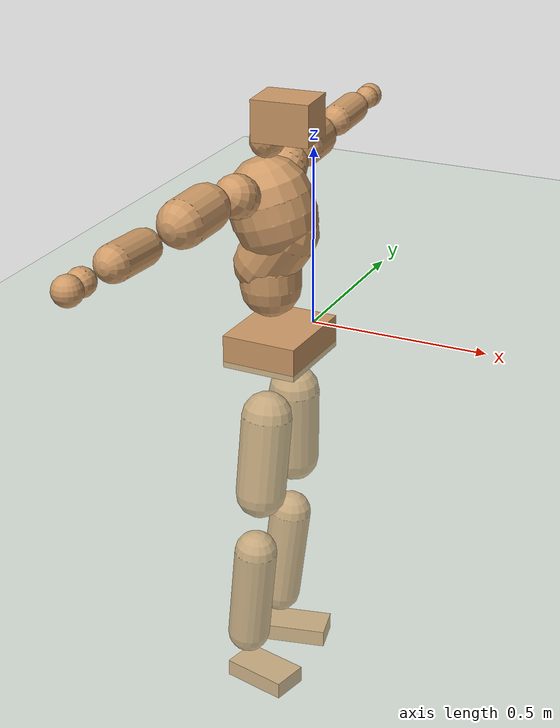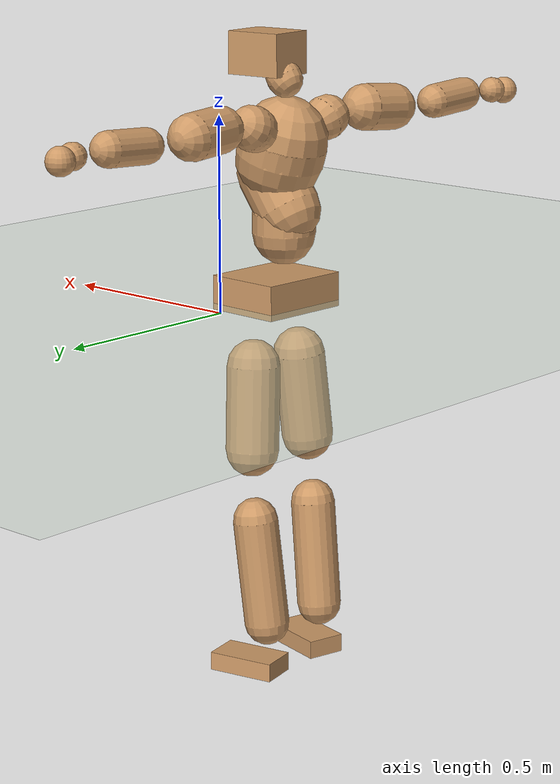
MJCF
<mujoco model="humanoid">
  <compiler coordinate="local" angle="radian"/>
  <default>
    <joint damping="0.0" armature="0.01" stiffness="0.0" limited="true"/>
    <geom conaffinity="1" condim="3" contype="7" margin="0.001" rgba="0.8 0.6 .4 1"/>
  </default>
  <asset>
    <texture type="skybox" builtin="gradient" rgb1=".4 .5 .6" rgb2="0 0 0" width="100" height="100"/>
    <texture builtin="flat" height="1278" mark="cross" markrgb="1 1 1" name="texgeom" random="0.01" rgb1="0.8 0.6 0.4" rgb2="0.8 0.6 0.4" type="cube" width="127"/>
    <texture builtin="checker" height="100" name="texplane" rgb1="0 0 0" rgb2="0.8 0.8 0.8" type="2d" width="100"/>
    <material name="MatPlane" reflectance="0.5" shininess="1" specular="1" texrepeat="60 60" texture="texplane"/>
    <material name="geom" texture="texgeom" texuniform="true"/>
  </asset>
  <worldbody>
    <light cutoff="100" diffuse="1 1 1" dir="-0 0 -1.3" directional="true" exponent="1" pos="0 0 1.3" specular=".1 .1 .1"/>
    <geom conaffinity="1" condim="3" name="floor" pos="0 0 0" rgba="0.8 0.9 0.8 1" size="100 100 .2" type="plane" material="MatPlane"/>
    <body name="Pelvis" pos="0.0018 -0.204 0.0402">
      <freejoint name="Pelvis"/>
      <geom type="box" contype="1" conaffinity="1" density="5359.374553" pos="-0.0056 0.0002 -0.0139" size="0.1033 0.1258 0.0449" quat="0.9999 0.0000 0.0000 -0.0163" name="Pelvis"/>
      <body name="L_Hip" pos="-0.0039 0.083 -0.0976">
        <joint name="L_Hip_x" type="hinge" pos="0 0 0" axis="1 0 0" stiffness="1600" damping="160" armature="0.02" range="-180.0000 180.0000"/>
        <joint name="L_Hip_y" type="hinge" pos="0 0 0" axis="0 1 0" stiffness="1600" damping="160" armature="0.02" range="-180.0000 180.0000"/>
        <joint name="L_Hip_z" type="hinge" pos="0 0 0" axis="0 0 1" stiffness="1600" damping="160" armature="0.02" range="-180.0000 180.0000"/>
        <geom type="capsule" contype="1" conaffinity="1" density="2040.816327" size="0.0689" fromto="-0.0044 0.0076 -0.0985 -0.0142 0.0244 -0.3180" name="L_Hip"/>
        <body name="L_Knee" pos="-0.0185 0.0319 -0.4165">
          <joint name="L_Knee_x" type="hinge" pos="0 0 0" axis="1 0 0" stiffness="1600" damping="160" armature="0.02" range="-180.0000 180.0000"/>
          <joint name="L_Knee_y" type="hinge" pos="0 0 0" axis="0 1 0" stiffness="1600" damping="160" armature="0.02" range="-180.0000 180.0000"/>
          <joint name="L_Knee_z" type="hinge" pos="0 0 0" axis="0 0 1" stiffness="1600" damping="160" armature="0.02" range="-180.0000 180.0000"/>
          <geom type="capsule" contype="1" conaffinity="1" density="1234.567901" size="0.0586" fromto="-0.0103 -0.0025 -0.0880 -0.0427 -0.0103 -0.3639" name="L_Knee"/>
          <body name="L_Ankle" pos="-0.0531 -0.0128 -0.4519">
            <joint name="L_Ankle_x" type="hinge" pos="0 0 0" axis="1 0 0" stiffness="1600" damping="160" armature="0.02" range="-180.0000 180.0000"/>
            <joint name="L_Ankle_y" type="hinge" pos="0 0 0" axis="0 1 0" stiffness="1600" damping="160" armature="0.02" range="-180.0000 180.0000"/>
            <joint name="L_Ankle_z" type="hinge" pos="0 0 0" axis="0 0 1" stiffness="1600" damping="160" armature="0.02" range="-180.0000 180.0000"/>
            <geom type="box" contype="1" conaffinity="1" density="1000.000009" pos="0.0628 0.0134 -0.0320" size="0.0895 0.0502 0.0241" quat="0.9945 0.0000 0.0000 0.1051" name="L_Ankle"/>
            <body name="L_Toe" pos="0.1255 0.0268 -0.064">
              <joint name="L_Toe_x" type="hinge" pos="0 0 0" axis="1 0 0" stiffness="1000" damping="100" armature="0.02" range="-180.0000 180.0000"/>
              <joint name="L_Toe_y" type="hinge" pos="0 0 0" axis="0 1 0" stiffness="1000" damping="100" armature="0.02" range="-180.0000 180.0000"/>
              <joint name="L_Toe_z" type="hinge" pos="0 0 0" axis="0 0 1" stiffness="1000" damping="100" armature="0.02" range="-180.0000 180.0000"/>
              <geom type="box" contype="1" conaffinity="1" density="8419927.39618" pos="0.0000 0.0000 0.0307" size="0.0011 0.0025 0.0011" quat="0.9938 0.0000 0.0000 0.1109" name="L_Toe"/>
            </body>
          </body>
        </body>
      </body>
      <body name="R_Hip" pos="0.0008 -0.0803 -0.098">
        <joint name="R_Hip_x" type="hinge" pos="0 0 0" axis="1 0 0" stiffness="1600" damping="160" armature="0.02" range="-180.0000 180.0000"/>
        <joint name="R_Hip_y" type="hinge" pos="0 0 0" axis="0 1 0" stiffness="1600" damping="160" armature="0.02" range="-180.0000 180.0000"/>
        <joint name="R_Hip_z" type="hinge" pos="0 0 0" axis="0 0 1" stiffness="1600" damping="160" armature="0.02" range="-180.0000 180.0000"/>
        <geom type="capsule" contype="1" conaffinity="1" density="2040.816327" size="0.0679" fromto="-0.0046 -0.0095 -0.0974 -0.0153 -0.0314 -0.3228" name="R_Hip"/>
        <body name="R_Knee" pos="-0.0199 -0.0409 -0.4202">
          <joint name="R_Knee_x" type="hinge" pos="0 0 0" axis="1 0 0" stiffness="1600" damping="160" armature="0.02" range="-180.0000 180.0000"/>
          <joint name="R_Knee_y" type="hinge" pos="0 0 0" axis="0 1 0" stiffness="1600" damping="160" armature="0.02" range="-180.0000 180.0000"/>
          <joint name="R_Knee_z" type="hinge" pos="0 0 0" axis="0 0 1" stiffness="1600" damping="160" armature="0.02" range="-180.0000 180.0000"/>
          <geom type="capsule" contype="1" conaffinity="1" density="1234.567901" size="0.0586" fromto="-0.0099 0.0031 -0.0880 -0.0412 0.0128 -0.3660" name="R_Knee"/>
          <body name="R_Ankle" pos="-0.0511 0.0159 -0.4541">
            <joint name="R_Ankle_x" type="hinge" pos="0 0 0" axis="1 0 0" stiffness="1600" damping="160" armature="0.02" range="-180.0000 180.0000"/>
            <joint name="R_Ankle_y" type="hinge" pos="0 0 0" axis="0 1 0" stiffness="1600" damping="160" armature="0.02" range="-180.0000 180.0000"/>
            <joint name="R_Ankle_z" type="hinge" pos="0 0 0" axis="0 0 1" stiffness="1600" damping="160" armature="0.02" range="-180.0000 180.0000"/>
            <geom type="box" contype="1" conaffinity="1" density="1000.000008" pos="0.0653 -0.0155 -0.0276" size="0.0919 0.0512 0.0238" quat="0.9932 0.0000 0.0000 -0.1164" name="R_Ankle"/>
            <body name="R_Toe" pos="0.1307 -0.0311 -0.0552">
              <joint name="R_Toe_x" type="hinge" pos="0 0 0" axis="1 0 0" stiffness="1000" damping="100" armature="0.02" range="-180.0000 180.0000"/>
              <joint name="R_Toe_y" type="hinge" pos="0 0 0" axis="0 1 0" stiffness="1000" damping="100" armature="0.02" range="-180.0000 180.0000"/>
              <joint name="R_Toe_z" type="hinge" pos="0 0 0" axis="0 0 1" stiffness="1000" damping="100" armature="0.02" range="-180.0000 180.0000"/>
              <geom type="box" contype="1" conaffinity="1" density="7898447.439294" pos="0.0000 0.0000 0.0289" size="0.001 0.0025 0.0012" quat="0.9942 0.0000 0.0000 -0.1076" name="R_Toe"/>
            </body>
          </body>
        </body>
      </body>
      <body name="Torso" pos="-0.0306 -0.0016 0.1119">
        <joint name="Torso_x" type="hinge" pos="0 0 0" axis="1 0 0" stiffness="2000" damping="200" armature="0.02" range="-180.0000 180.0000"/>
        <joint name="Torso_y" type="hinge" pos="0 0 0" axis="0 1 0" stiffness="2000" damping="200" armature="0.02" range="-180.0000 180.0000"/>
        <joint name="Torso_z" type="hinge" pos="0 0 0" axis="0 0 1" stiffness="2000" damping="200" armature="0.02" range="-180.0000 180.0000"/>
        <geom type="capsule" contype="1" conaffinity="1" density="2040.816327" size="0.0815" fromto="-0.0014 0.0010 0.0815 -0.0005 0.0004 0.0294" name="Torso"/>
        <body name="Spine" pos="-0.0019 0.0014 0.1109">
          <joint name="Spine_x" type="hinge" pos="0 0 0" axis="1 0 0" stiffness="2000" damping="200" armature="0.02" range="-180.0000 180.0000"/>
          <joint name="Spine_y" type="hinge" pos="0 0 0" axis="0 1 0" stiffness="2000" damping="200" armature="0.02" range="-180.0000 180.0000"/>
          <joint name="Spine_z" type="hinge" pos="0 0 0" axis="0 0 1" stiffness="2000" damping="200" armature="0.02" range="-180.0000 180.0000"/>
          <geom type="capsule" contype="1" conaffinity="1" density="2040.816327" size="0.0842" fromto="0.0474 0.0025 0.0695 -0.0137 -0.0007 -0.0201" name="Spine"/>
          <body name="Chest" pos="0.0337 0.0017 0.0494">
            <joint name="Chest_x" type="hinge" pos="0 0 0" axis="1 0 0" stiffness="2000" damping="200" armature="0.02" range="-180.0000 180.0000"/>
            <joint name="Chest_y" type="hinge" pos="0 0 0" axis="0 1 0" stiffness="2000" damping="200" armature="0.02" range="-180.0000 180.0000"/>
            <joint name="Chest_z" type="hinge" pos="0 0 0" axis="0 0 1" stiffness="2000" damping="200" armature="0.02" range="-180.0000 180.0000"/>
            <geom type="capsule" contype="1" conaffinity="1" density="2040.816327" size="0.113" fromto="-0.0348 -0.0004 0.1075 -0.0191 -0.0002 0.0590" name="Chest"/>
            <body name="Neck" pos="-0.0638 -0.0004 0.2339">
              <joint name="Neck_x" type="hinge" pos="0 0 0" axis="1 0 0" stiffness="1000" damping="100" armature="0.02" range="-180.0000 180.0000"/>
              <joint name="Neck_y" type="hinge" pos="0 0 0" axis="0 1 0" stiffness="1000" damping="100" armature="0.02" range="-180.0000 180.0000"/>
              <joint name="Neck_z" type="hinge" pos="0 0 0" axis="0 0 1" stiffness="1000" damping="100" armature="0.02" range="-180.0000 180.0000"/>
              <geom type="capsule" contype="1" conaffinity="1" density="1000" size="0.0451" fromto="0.0299 0.0014 0.0337 0.0231 0.0010 0.0260" name="Neck"/>
              <body name="Head" pos="0.053 0.0024 0.0598">
                <joint name="Head_x" type="hinge" pos="0 0 0" axis="1 0 0" stiffness="1000" damping="100" armature="0.02" range="-180.0000 180.0000"/>
                <joint name="Head_y" type="hinge" pos="0 0 0" axis="0 1 0" stiffness="1000" damping="100" armature="0.02" range="-180.0000 180.0000"/>
                <joint name="Head_z" type="hinge" pos="0 0 0" axis="0 0 1" stiffness="1000" damping="100" armature="0.02" range="-180.0000 180.0000"/>
                <geom type="box" contype="1" conaffinity="1" density="2250.000396" pos="0.0275 0.0022 0.0309" size="0.0767 0.062 0.0545" quat="0.9992 0.0000 0.0000 0.0399" name="Head"/>
              </body>
            </body>
            <body name="L_Thorax" pos="-0.0466 0.0866 0.1335">
              <joint name="L_Thorax_x" type="hinge" pos="0 0 0" axis="1 0 0" stiffness="1000" damping="100" armature="0.02" range="-180.0000 180.0000"/>
              <joint name="L_Thorax_y" type="hinge" pos="0 0 0" axis="0 1 0" stiffness="1000" damping="100" armature="0.02" range="-180.0000 180.0000"/>
              <joint name="L_Thorax_z" type="hinge" pos="0 0 0" axis="0 0 1" stiffness="1000" damping="100" armature="0.02" range="-180.0000 180.0000"/>
              <geom type="capsule" contype="1" conaffinity="1" density="1000" size="0.0577" fromto="-0.0064 0.0534 0.0210 -0.0046 0.0388 0.0152" name="L_Thorax"/>
              <body name="L_Shoulder" pos="-0.011 0.0922 0.0362">
                <joint name="L_Shoulder_x" type="hinge" pos="0 0 0" axis="1 0 0" stiffness="1000" damping="100" armature="0.02" range="-720.0000 720.0000"/>
                <joint name="L_Shoulder_y" type="hinge" pos="0 0 0" axis="0 1 0" stiffness="1000" damping="100" armature="0.02" range="-720.0000 720.0000"/>
                <joint name="L_Shoulder_z" type="hinge" pos="0 0 0" axis="0 0 1" stiffness="1000" damping="100" armature="0.02" range="-720.0000 720.0000"/>
                <geom type="capsule" contype="1" conaffinity="1" density="1000" size="0.059" fromto="-0.0095 0.0883 -0.0042 -0.0213 0.1983 -0.0095" name="L_Shoulder"/>
                <body name="L_Elbow" pos="-0.0308 0.2867 -0.0138">
                  <joint name="L_Elbow_x" type="hinge" pos="0 0 0" axis="1 0 0" stiffness="1000" damping="100" armature="0.02" range="-720.0000 720.0000"/>
                  <joint name="L_Elbow_y" type="hinge" pos="0 0 0" axis="0 1 0" stiffness="1000" damping="100" armature="0.02" range="-720.0000 720.0000"/>
                  <joint name="L_Elbow_z" type="hinge" pos="0 0 0" axis="0 0 1" stiffness="1000" damping="100" armature="0.02" range="-720.0000 720.0000"/>
                  <geom type="capsule" contype="1" conaffinity="1" density="1000" size="0.0442" fromto="0.0003 0.0741 0.0037 0.0007 0.1923 0.0097" name="L_Elbow"/>
                  <body name="L_Wrist" pos="0.001 0.2664 0.0134">
                    <joint name="L_Wrist_x" type="hinge" pos="0 0 0" axis="1 0 0" stiffness="600" damping="60" armature="0.02" range="-180.0000 180.0000"/>
                    <joint name="L_Wrist_y" type="hinge" pos="0 0 0" axis="0 1 0" stiffness="600" damping="60" armature="0.02" range="-180.0000 180.0000"/>
                    <joint name="L_Wrist_z" type="hinge" pos="0 0 0" axis="0 0 1" stiffness="600" damping="60" armature="0.02" range="-180.0000 180.0000"/>
                    <geom type="capsule" contype="1" conaffinity="1" density="1000" size="0.0332" fromto="-0.0071 0.0428 -0.0051 -0.0074 0.0448 -0.0053" name="L_Wrist"/>
                    <body name="L_Hand" pos="-0.0145 0.0876 -0.0105">
                      <joint name="L_Hand_x" type="hinge" pos="0 0 0" axis="1 0 0" stiffness="600" damping="60" armature="0.02" range="-180.0000 180.0000"/>
                      <joint name="L_Hand_y" type="hinge" pos="0 0 0" axis="0 1 0" stiffness="600" damping="60" armature="0.02" range="-180.0000 180.0000"/>
                      <joint name="L_Hand_z" type="hinge" pos="0 0 0" axis="0 0 1" stiffness="600" damping="60" armature="0.02" range="-180.0000 180.0000"/>
                      <geom type="sphere" contype="1" conaffinity="1" density="1000" size="0.0352" pos="0.0000 0.0000 0.0000" name="L_Hand"/>
                    </body>
                  </body>
                </body>
              </body>
            </body>
            <body name="R_Thorax" pos="-0.0513 -0.0883 0.1321">
              <joint name="R_Thorax_x" type="hinge" pos="0 0 0" axis="1 0 0" stiffness="1000" damping="100" armature="0.02" range="-180.0000 180.0000"/>
              <joint name="R_Thorax_y" type="hinge" pos="0 0 0" axis="0 1 0" stiffness="1000" damping="100" armature="0.02" range="-180.0000 180.0000"/>
              <joint name="R_Thorax_z" type="hinge" pos="0 0 0" axis="0 0 1" stiffness="1000" damping="100" armature="0.02" range="-180.0000 180.0000"/>
              <geom type="capsule" contype="1" conaffinity="1" density="1000" size="0.0572" fromto="-0.0061 -0.0525 0.0218 -0.0050 -0.0431 0.0179" name="R_Thorax"/>
              <body name="R_Shoulder" pos="-0.0111 -0.0956 0.0397">
                <joint name="R_Shoulder_x" type="hinge" pos="0 0 0" axis="1 0 0" stiffness="1000" damping="100" armature="0.02" range="-720.0000 720.0000"/>
                <joint name="R_Shoulder_y" type="hinge" pos="0 0 0" axis="0 1 0" stiffness="1000" damping="100" armature="0.02" range="-720.0000 720.0000"/>
                <joint name="R_Shoulder_z" type="hinge" pos="0 0 0" axis="0 0 1" stiffness="1000" damping="100" armature="0.02" range="-720.0000 720.0000"/>
                <geom type="capsule" contype="1" conaffinity="1" density="1000" size="0.0616" fromto="-0.0081 -0.0910 -0.0063 -0.0171 -0.1923 -0.0134" name="R_Shoulder"/>
                <body name="R_Elbow" pos="-0.0251 -0.2833 -0.0197">
                  <joint name="R_Elbow_x" type="hinge" pos="0 0 0" axis="1 0 0" stiffness="1000" damping="100" armature="0.02" range="-720.0000 720.0000"/>
                  <joint name="R_Elbow_y" type="hinge" pos="0 0 0" axis="0 1 0" stiffness="1000" damping="100" armature="0.02" range="-720.0000 720.0000"/>
                  <joint name="R_Elbow_z" type="hinge" pos="0 0 0" axis="0 0 1" stiffness="1000" damping="100" armature="0.02" range="-720.0000 720.0000"/>
                  <geom type="capsule" contype="1" conaffinity="1" density="1000" size="0.0453" fromto="-0.0005 -0.0752 0.0040 -0.0014 -0.2038 0.0109" name="R_Elbow"/>
                  <body name="R_Wrist" pos="-0.0019 -0.279 0.0149">
                    <joint name="R_Wrist_x" type="hinge" pos="0 0 0" axis="1 0 0" stiffness="600" damping="60" armature="0.02" range="-180.0000 180.0000"/>
                    <joint name="R_Wrist_y" type="hinge" pos="0 0 0" axis="0 1 0" stiffness="600" damping="60" armature="0.02" range="-180.0000 180.0000"/>
                    <joint name="R_Wrist_z" type="hinge" pos="0 0 0" axis="0 0 1" stiffness="600" damping="60" armature="0.02" range="-180.0000 180.0000"/>
                    <geom type="capsule" contype="1" conaffinity="1" density="1000" size="0.0347" fromto="-0.0059 -0.0444 -0.0041 -0.0062 -0.0464 -0.0042" name="R_Wrist"/>
                    <body name="R_Hand" pos="-0.0121 -0.0908 -0.0083">
                      <joint name="R_Hand_x" type="hinge" pos="0 0 0" axis="1 0 0" stiffness="600" damping="60" armature="0.02" range="-180.0000 180.0000"/>
                      <joint name="R_Hand_y" type="hinge" pos="0 0 0" axis="0 1 0" stiffness="600" damping="60" armature="0.02" range="-180.0000 180.0000"/>
                      <joint name="R_Hand_z" type="hinge" pos="0 0 0" axis="0 0 1" stiffness="600" damping="60" armature="0.02" range="-180.0000 180.0000"/>
                      <geom type="sphere" contype="1" conaffinity="1" density="1000" size="0.0364" pos="0.0000 0.0000 0.0000" name="R_Hand"/>
                    </body>
                  </body>
                </body>
              </body>
            </body>
          </body>
        </body>
      </body>
    </body>
  </worldbody>
  <actuator>
    <motor name="L_Hip_x" joint="L_Hip_x" gear="500"/>
    <motor name="L_Hip_y" joint="L_Hip_y" gear="500"/>
    <motor name="L_Hip_z" joint="L_Hip_z" gear="500"/>
    <motor name="L_Knee_x" joint="L_Knee_x" gear="500"/>
    <motor name="L_Knee_y" joint="L_Knee_y" gear="500"/>
    <motor name="L_Knee_z" joint="L_Knee_z" gear="500"/>
    <motor name="L_Ankle_x" joint="L_Ankle_x" gear="500"/>
    <motor name="L_Ankle_y" joint="L_Ankle_y" gear="500"/>
    <motor name="L_Ankle_z" joint="L_Ankle_z" gear="500"/>
    <motor name="L_Toe_x" joint="L_Toe_x" gear="500"/>
    <motor name="L_Toe_y" joint="L_Toe_y" gear="500"/>
    <motor name="L_Toe_z" joint="L_Toe_z" gear="500"/>
    <motor name="R_Hip_x" joint="R_Hip_x" gear="500"/>
    <motor name="R_Hip_y" joint="R_Hip_y" gear="500"/>
    <motor name="R_Hip_z" joint="R_Hip_z" gear="500"/>
    <motor name="R_Knee_x" joint="R_Knee_x" gear="500"/>
    <motor name="R_Knee_y" joint="R_Knee_y" gear="500"/>
    <motor name="R_Knee_z" joint="R_Knee_z" gear="500"/>
    <motor name="R_Ankle_x" joint="R_Ankle_x" gear="500"/>
    <motor name="R_Ankle_y" joint="R_Ankle_y" gear="500"/>
    <motor name="R_Ankle_z" joint="R_Ankle_z" gear="500"/>
    <motor name="R_Toe_x" joint="R_Toe_x" gear="500"/>
    <motor name="R_Toe_y" joint="R_Toe_y" gear="500"/>
    <motor name="R_Toe_z" joint="R_Toe_z" gear="500"/>
    <motor name="Torso_x" joint="Torso_x" gear="500"/>
    <motor name="Torso_y" joint="Torso_y" gear="500"/>
    <motor name="Torso_z" joint="Torso_z" gear="500"/>
    <motor name="Spine_x" joint="Spine_x" gear="500"/>
    <motor name="Spine_y" joint="Spine_y" gear="500"/>
    <motor name="Spine_z" joint="Spine_z" gear="500"/>
    <motor name="Chest_x" joint="Chest_x" gear="500"/>
    <motor name="Chest_y" joint="Chest_y" gear="500"/>
    <motor name="Chest_z" joint="Chest_z" gear="500"/>
    <motor name="Neck_x" joint="Neck_x" gear="500"/>
    <motor name="Neck_y" joint="Neck_y" gear="500"/>
    <motor name="Neck_z" joint="Neck_z" gear="500"/>
    <motor name="Head_x" joint="Head_x" gear="500"/>
    <motor name="Head_y" joint="Head_y" gear="500"/>
    <motor name="Head_z" joint="Head_z" gear="500"/>
    <motor name="L_Thorax_x" joint="L_Thorax_x" gear="500"/>
    <motor name="L_Thorax_y" joint="L_Thorax_y" gear="500"/>
    <motor name="L_Thorax_z" joint="L_Thorax_z" gear="500"/>
    <motor name="L_Shoulder_x" joint="L_Shoulder_x" gear="500"/>
    <motor name="L_Shoulder_y" joint="L_Shoulder_y" gear="500"/>
    <motor name="L_Shoulder_z" joint="L_Shoulder_z" gear="500"/>
    <motor name="L_Elbow_x" joint="L_Elbow_x" gear="500"/>
    <motor name="L_Elbow_y" joint="L_Elbow_y" gear="500"/>
    <motor name="L_Elbow_z" joint="L_Elbow_z" gear="500"/>
    <motor name="L_Wrist_x" joint="L_Wrist_x" gear="500"/>
    <motor name="L_Wrist_y" joint="L_Wrist_y" gear="500"/>
    <motor name="L_Wrist_z" joint="L_Wrist_z" gear="500"/>
    <motor name="L_Hand_x" joint="L_Hand_x" gear="500"/>
    <motor name="L_Hand_y" joint="L_Hand_y" gear="500"/>
    <motor name="L_Hand_z" joint="L_Hand_z" gear="500"/>
    <motor name="R_Thorax_x" joint="R_Thorax_x" gear="500"/>
    <motor name="R_Thorax_y" joint="R_Thorax_y" gear="500"/>
    <motor name="R_Thorax_z" joint="R_Thorax_z" gear="500"/>
    <motor name="R_Shoulder_x" joint="R_Shoulder_x" gear="500"/>
    <motor name="R_Shoulder_y" joint="R_Shoulder_y" gear="500"/>
    <motor name="R_Shoulder_z" joint="R_Shoulder_z" gear="500"/>
    <motor name="R_Elbow_x" joint="R_Elbow_x" gear="500"/>
    <motor name="R_Elbow_y" joint="R_Elbow_y" gear="500"/>
    <motor name="R_Elbow_z" joint="R_Elbow_z" gear="500"/>
    <motor name="R_Wrist_x" joint="R_Wrist_x" gear="500"/>
    <motor name="R_Wrist_y" joint="R_Wrist_y" gear="500"/>
    <motor name="R_Wrist_z" joint="R_Wrist_z" gear="500"/>
    <motor name="R_Hand_x" joint="R_Hand_x" gear="500"/>
    <motor name="R_Hand_y" joint="R_Hand_y" gear="500"/>
    <motor name="R_Hand_z" joint="R_Hand_z" gear="500"/>
  </actuator>
  <contact>
    <exclude body1="Torso" body2="Chest"/>
    <exclude body1="Head" body2="Chest"/>
    <exclude body1="R_Knee" body2="R_Toe"/>
    <exclude body1="R_Knee" body2="L_Ankle"/>
    <exclude body1="R_Knee" body2="L_Toe"/>
    <exclude body1="L_Knee" body2="L_Toe"/>
    <exclude body1="L_Knee" body2="R_Ankle"/>
    <exclude body1="L_Knee" body2="R_Toe"/>
    <exclude body1="L_Shoulder" body2="Chest"/>
    <exclude body1="R_Shoulder" body2="Chest"/>
  </contact>
  <sensor/>
  <size njmax="700" nconmax="700"/>
</mujoco>
